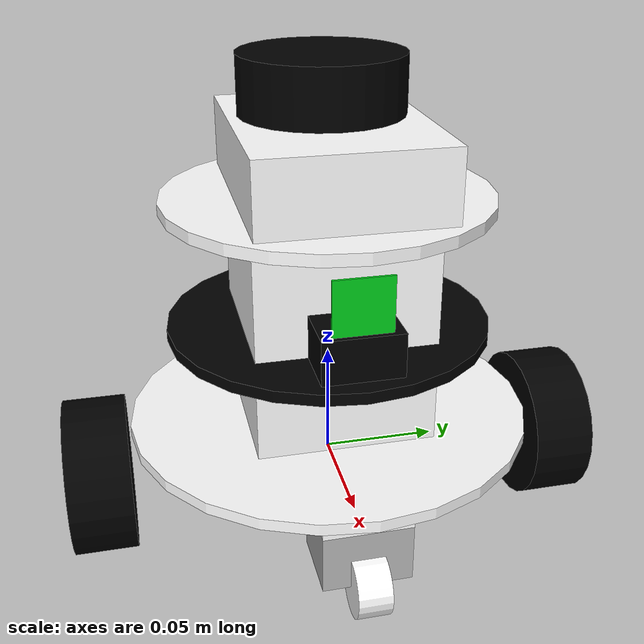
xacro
<?xml version="1.0"?>

<robot xmlns:xacro="http://www.ros.org/wiki/xacro"  name="TTR01">

    <xacro:arg name="use_ros2_control" default="true"/>
    <xacro:arg name="sim_mode" default="false"/>

    <xacro:include filename="robot_parameters.xacro"/>
    <xacro:include filename="robot.xacro"/>
    <xacro:include filename="gazebo_setup.xacro"/>
    <xacro:include filename="lidar.xacro"/>
    <xacro:include filename="camera.xacro" />

    <xacro:if value="$(arg use_ros2_control)">
        <xacro:include filename="ros2_control.xacro" />
    </xacro:if>
    <xacro:unless value="$(arg use_ros2_control)">
        <xacro:include filename="gazebo_control.xacro" />
    </xacro:unless>

    </robot>

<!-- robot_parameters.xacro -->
<robot xmlns:xacro="http://www.ros.org/wiki/xacro" >

    <!-- Colors -->
    <material name="white">
        <color rgba="1 1 1 1"/>
    </material>

    <material name="orange">
        <color rgba="1 0.3 0.1 1"/>
    </material>

    <material name="blue">
        <color rgba="0.2 0.2 1 1"/>
    </material>

    <material name="green">
        <color rgba="0 0.8 0.1 1"/>
    </material>

    <material name="light_gray">
        <color rgba="0.7 0.7 0.7 1"/>
    </material>

    <material name="dark_gray">
        <color rgba="0.3 0.3 0.3 1"/>
    </material>

    <material name="black">
        <color rgba="0 0 0 1"/>
    </material>

    <!--Measures-->
    <xacro:property name="B_base_length" value="0.005"/>
    <xacro:property name="B_base_radius" value="0.089"/>

    <xacro:property name="MT_length" value="0.005"/>
    <xacro:property name="MT_radius" value="0.070"/>

    <xacro:property name="Support_AX" value="0.07571"/>
    <xacro:property name="Support_AY" value="0.07648"/>
    <xacro:property name="Support_AZ" value="0.04"/>

    <xacro:property name="Support_BX" value="0.07571"/>
    <xacro:property name="Support_BY" value="0.07648"/>
    <xacro:property name="Support_BZ" value="0.051"/>

    <xacro:property name="wheel_thickness" value="0.027"/>
    <xacro:property name="wheel_radius" value="0.0341"/>

    <xacro:property name="C_support_box_X" value="0.032"/>
    <xacro:property name="C_support_box_Y" value="0.038"/>
    <xacro:property name="C_support_box_Z" value="0.013"/>

    <xacro:property name="U_base_box_X" value="0.032"/>
    <xacro:property name="U_base_box_Y" value="0.038"/>
    <xacro:property name="U_base_box_Z" value="0.0256"/>

    <xacro:property name="U_wheel_thickness" value="0.0144"/>
    <xacro:property name="U_wheel_radius" value="0.013"/>

    <xacro:property name="Lidar_base_X" value="0.10457"/>
    <xacro:property name="Lidar_base_Y" value="0.0787"/>
    <xacro:property name="Lidar_base_Z" value="0.0305"/>

    <xacro:property name="Lidar_motor_length" value="0.0245"/>
    <xacro:property name="Lidar_motor_radius" value="0.035"/>

    <xacro:property name="Camera_base_X" value="0.0265"/>
    <xacro:property name="Camera_base_Y" value="0.0335"/>
    <xacro:property name="Camera_base_Z" value="0.01878"/>

    <xacro:property name="Camera_X" value="0.00112"/>
    <xacro:property name="Camera_Y" value="0.0246"/>
    <xacro:property name="Camera_Z" value="0.024"/>

    <!--Mass-->
    <xacro:property name="B_base_mass" value="0.08"/>

    <xacro:property name="MT_mass" value="0.04"/>

    <xacro:property name="Support_A_mass" value="0.3"/>

    <xacro:property name="Support_B_mass" value="0.3"/>

    <xacro:property name="wheel_mass" value="0.300"/>

    <xacro:property name="C_support_mass" value="0.01"/>

    <xacro:property name="U_base_mass" value="0.05"/>

    <xacro:property name="U_wheel_mass" value="0.01"/>

    <xacro:property name="Lidar_base_mass" value="0.1"/>

    <xacro:property name="Lidar_motor_mass" value="0.1"/>

    <xacro:property name="Camera_base_mass" value="0.025"/>

    <xacro:property name="Camera_mass" value="0.01"/>

    <!-- Standard inertial calculations -->
    <xacro:macro name="inertial_sphere" params="mass radius *origin">
        <inertial>
            <xacro:insert_block name="origin"/>
            <mass value="${mass}" />
            <inertia ixx="${(2/5) * mass * (radius*radius)}" ixy="0.0" ixz="0.0"
                    iyy="${(2/5) * mass * (radius*radius)}" iyz="0.0"
                    izz="${(2/5) * mass * (radius*radius)}" />
        </inertial>
    </xacro:macro>

    <xacro:macro name="inertial_box" params="mass x y z *origin">
        <inertial>
            <xacro:insert_block name="origin"/>
            <mass value="${mass}" />
            <inertia ixx="${(1/12) * mass * (y*y+z*z)}" ixy="0.0" ixz="0.0"
                    iyy="${(1/12) * mass * (z*z+x*x)}" iyz="0.0"
                    izz="${(1/12) * mass * (x*x+y*y)}" />
        </inertial>
    </xacro:macro>

    <xacro:macro name="inertial_cylinder" params="mass length radius *origin">
        <inertial>
            <xacro:insert_block name="origin"/>
            <mass value="${mass}" />
            <inertia ixx="${(1/12) * mass * (3*radius*radius + length*length)}" ixy="0.0" ixz="0.0"
                    izz="${(1/2) * mass * (radius*radius)}"
                    iyy="${(1/12) * mass * (3*radius*radius + length*length)}" iyz="0.0" />
        </inertial>
    </xacro:macro>

</robot>

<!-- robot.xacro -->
<robot xmlns:xacro="http://www.ros.org/wiki/xacro" >

    <!--base link-->
    <link name="base_link"> </link>

    <!--Base footprint-->
    <joint name="base_footprint_joint" type="fixed">
        <origin xyz="0 0 -0.0341" rpy="0 0 0"/>
        <parent link="base_link"/>
        <child link="base_footprint"/>
    </joint>

    <link name="base_footprint">
    </link>

    <!--Bottom base-->
    <joint name="B_base_joint" type="fixed">
        <origin xyz="0 0 0.0225" rpy="0 0 0"/>
        <parent link="base_link"/>
        <child link="B_base_link"/>
    </joint>

    <link name="B_base_link">
        <visual>
            <origin xyz="0 0 -${B_base_length/2}" rpy="0 0 0"/>
            <geometry>
                <cylinder length="${B_base_length}" radius="${B_base_radius}"/>
            </geometry>
            <material name="white"/>
        </visual>

        <collision>
            <origin xyz="0 0 -${B_base_length/2}" rpy="0 0 0"/>
            <geometry>
                <cylinder length="${B_base_length}" radius="${B_base_radius}"/>
            </geometry>
        </collision>

        <xacro:inertial_cylinder mass="${B_base_mass}" length="${B_base_length}" radius="${B_base_radius}">
            <origin xyz="0 0 -${B_base_length/2}" rpy="0 0 0"/>
        </xacro:inertial_cylinder>
    </link>

    <!--Left wheel-->
    <joint name="L_wheel_joint" type="continuous">
        <origin xyz="0 0.104 0" rpy="-${pi/2} ${pi/2} 0"/>
        <parent link="base_link"/>
        <child link="L_wheel_link"/>
        <axis xyz="0 0 1"/>
        <limit effort="0.323" velocity="10.47" />
    </joint>

    <link name="L_wheel_link">
        <visual>
            <origin xyz="0 0 0" rpy="0 0 0"/>
            <geometry>
                <cylinder length="${wheel_thickness}" radius="${wheel_radius}"/>
            </geometry>
            <material name="black"/>
        </visual>

        <collision>
            <origin xyz="0 0 0" rpy="0 0 0"/>
            <geometry>
                <sphere radius="${wheel_radius}"/>
            </geometry>
        </collision>

        <xacro:inertial_cylinder mass="${wheel_mass}" length="${wheel_thickness}" radius="${wheel_radius}">
            <origin xyz="0 0 0" rpy="0 0 0"/>
        </xacro:inertial_cylinder>
    </link>

    <!--Right wheel-->
    <joint name="R_wheel_joint" type="continuous">
        <origin xyz="0 -0.104 0" rpy="${pi/2} ${pi/2} 0"/>
        <parent link="base_link"/>
        <child link="R_wheel_link"/>
        <axis xyz="0 0 -1"/>
        <limit effort="0.323" velocity="10.47" />
    </joint>

    <link name="R_wheel_link">
        <visual>
            <origin xyz="0 0 0" rpy="0 0 0"/>
            <geometry>
                <cylinder length="${wheel_thickness}" radius="${wheel_radius}"/>
            </geometry>
            <material name="black"/>
        </visual>

        <collision>
            <origin xyz="0 0 0" rpy="0 0 0"/>
            <geometry>
                <sphere radius="${wheel_radius}"/>
            </geometry>
        </collision>

        <xacro:inertial_cylinder mass="${wheel_mass}" length="${wheel_thickness}" radius="${wheel_radius}">
            <origin xyz="0 0 0" rpy="0 0 0"/>
        </xacro:inertial_cylinder>
    </link>

    <!-- Caster support 1 -->
    <joint name="C_support_1_joint" type="fixed">
        <origin xyz="0.05751 0 -0.005" rpy="0 0 0"/>
        <parent link="B_base_link"/>
        <child link="C_support_1_link"/>
    </joint>

    <link name="C_support_1_link">
        <visual>
            <origin xyz="0 0 -${C_support_box_Z/2}" rpy="0 0 0"/>
            <geometry>
                <box size="${C_support_box_X} ${C_support_box_Y} ${C_support_box_Z}"/>
            </geometry>
            <material name="white"/>
        </visual>

        <collision>
            <origin xyz="0 0 -${C_support_box_Z/2}" rpy="0 0 0"/>
            <geometry>
                <box size="${C_support_box_X} ${C_support_box_Y} ${C_support_box_Z}"/>
            </geometry>
        </collision>

        <xacro:inertial_box mass="${C_support_mass}" x="${C_support_box_X}" y="${C_support_box_Y}" z="${C_support_box_Z}">
            <origin xyz="0 0 -${C_support_box_Z/2}" rpy="0 0 0"/>
        </xacro:inertial_box>
    </link>

    <!--Caster wheel base 1-->
    <joint name="U_base_wheel_1_joint" type="continuous">
        <origin xyz="0 0 -0.013" rpy="${pi} 0 0"/>
        <parent link="C_support_1_link"/>
        <child link="U_base_wheel_1_link"/>
        <axis xyz="0 0 -1"/>
    </joint>

    <link name="U_base_wheel_1_link">
        <visual>
            <origin xyz="0 0 ${U_base_box_Z/2}" rpy="0 0 0"/>
            <geometry>
                <box size="${U_base_box_X} ${U_base_box_Y} ${U_base_box_Z}"/>
            </geometry>
            <material name="light_gray"/>
        </visual>

        <collision>
            <origin xyz="0 0 ${U_base_box_Z/2}" rpy="0 0 0"/>
            <geometry>
                <box size="${U_base_box_X} ${U_base_box_Y} ${U_base_box_Z}"/>
            </geometry>
        </collision>

        <xacro:inertial_box mass="${U_base_mass}" x="${U_base_box_X}" y="${U_base_box_Y}" z="${U_base_box_Z}">
            <origin xyz="0 0 ${U_base_box_Z/2}" rpy="0 0 0"/>
        </xacro:inertial_box>
    </link>

    <!--Caster wheel 1-->
    <joint name="U_wheel_1_joint" type="continuous">
        <origin xyz="0.016 0 0.0256" rpy="${pi/2} 0 0"/>

        <parent link="U_base_wheel_1_link"/>
        <child link="U_wheel_1_link"/>
        <axis xyz="0 0 -1"/>
    </joint>

    <link name="U_wheel_1_link">
        <visual>
            <origin xyz="0 0 0" rpy="0 0 0"/>

            <geometry>
                <cylinder radius="${U_wheel_radius}" length="${U_wheel_thickness}"/>
            </geometry>

            <material name="white"/>
        </visual>

        <collision>
            <origin xyz="0 0 0" rpy="0 0 0"/>

            <geometry>
                <cylinder radius="${U_wheel_radius}" length="${U_wheel_thickness}"/>
            </geometry>
        </collision>

        <xacro:inertial_cylinder mass="${U_wheel_mass}" length="${U_wheel_thickness}" radius="${U_wheel_radius}">
            <origin xyz="0 0 0" rpy="0 0 0"/>

        </xacro:inertial_cylinder>
    </link>

    <!-- Caster support 2 -->
    <joint name="C_support_2_joint" type="fixed">
        <origin xyz="-0.05751 0 -0.005" rpy="0 0 0"/>
        <parent link="B_base_link"/>
        <child link="C_support_2_link"/>
    </joint>

    <link name="C_support_2_link">
        <visual>
            <origin xyz="0 0 -${C_support_box_Z/2}" rpy="0 0 0"/>
            <geometry>
                <box size="${C_support_box_X} ${C_support_box_Y} ${C_support_box_Z}"/>
            </geometry>
            <material name="white"/>
        </visual>

        <collision>
            <origin xyz="0 0 -${C_support_box_Z/2}" rpy="0 0 0"/>
            <geometry>
                <box size="${C_support_box_X} ${C_support_box_Y} ${C_support_box_Z}"/>
            </geometry>
        </collision>

        <xacro:inertial_box mass="${C_support_mass}" x="${C_support_box_X}" y="${C_support_box_Y}" z="${C_support_box_Z}">
            <origin xyz="0 0 -${C_support_box_Z/2}" rpy="0 0 0"/>
        </xacro:inertial_box>
    </link>

    <!--Caster wheel base 2-->
    <joint name="U_base_wheel_2_joint" type="continuous">
        <origin xyz="0 0 -0.013" rpy="${pi} 0 0"/>
        <parent link="C_support_2_link"/>
        <child link="U_base_wheel_2_link"/>
        <axis xyz="0 0 -1"/>
    </joint>

    <link name="U_base_wheel_2_link">
        <visual>
            <origin xyz="0 0 ${U_base_box_Z/2}" rpy="0 0 0"/>
            <geometry>
                <box size="${U_base_box_X} ${U_base_box_Y} ${U_base_box_Z}"/>
            </geometry>
            <material name="light_gray"/>
        </visual>

        <collision>
            <origin xyz="0 0 ${U_base_box_Z/2}" rpy="0 0 0"/>
            <geometry>
                <box size="${U_base_box_X} ${U_base_box_Y} ${U_base_box_Z}"/>
            </geometry>
        </collision>

        <xacro:inertial_box mass="${U_base_mass}" x="${U_base_box_X}" y="${U_base_box_Y}" z="${U_base_box_Z}">
            <origin xyz="0 0 ${U_base_box_Z/2}" rpy="0 0 0"/>
        </xacro:inertial_box>
    </link>

    <!--Caster wheel 2-->
    <joint name="U_wheel_2_joint" type="continuous">
        <origin xyz="0.016 0 0.0256" rpy="${pi/2} 0 0"/>

        <parent link="U_base_wheel_2_link"/>
        <child link="U_wheel_2_link"/>
        <axis xyz="0 0 -1"/>
    </joint>

    <link name="U_wheel_2_link">
        <visual>
            <origin xyz="0 0 0" rpy="0 0 0"/>

            <geometry>
                <cylinder radius="${U_wheel_radius}" length="${U_wheel_thickness}"/>
            </geometry>

            <material name="white"/>
        </visual>

        <collision>
            <origin xyz="0 0 0" rpy="0 0 0"/>

            <geometry>
                <cylinder radius="${U_wheel_radius}" length="${U_wheel_thickness}"/>
            </geometry>
        </collision>

        <xacro:inertial_cylinder mass="${U_wheel_mass}" length="${U_wheel_thickness}" radius="${U_wheel_radius}">
            <origin xyz="0 0 0" rpy="0 0 0"/>

        </xacro:inertial_cylinder>
    </link>

    <!--Support A-->
    <joint name="Support_A_joint" type="fixed">
        <origin xyz="0 0 0.02" rpy="0 0 0"/>
        <parent link="B_base_link"/>
        <child link="Support_A_link"/>
    </joint>

    <link name="Support_A_link">
        <visual>
            <origin xyz="0 0 0" rpy="0 0 0"/>
            <geometry>
                <box size="${Support_AX} ${Support_AY} ${Support_AZ}"/>
            </geometry>
            <material name="white"/>
        </visual>

        <collision>
            <origin xyz="0 0 0" rpy="0 0 0"/>
            <geometry>
                <box size="${Support_AX} ${Support_AY} ${Support_AZ}"/>
            </geometry>
        </collision>

        <xacro:inertial_box mass="${Support_A_mass}" x="${Support_AX}" y="${Support_AY}" z="${Support_AZ}">
            <origin xyz="0 0 0" rpy="0 0 0"/>
        </xacro:inertial_box>
    </link>

    <!--Middle base-->
    <joint name="M_base_joint" type="fixed">
        <origin xyz="0 0 0.025" rpy="0 0 0"/>
        <parent link="Support_A_link"/>
        <child link="M_base_link"/>
    </joint>

    <link name="M_base_link">
        <visual>
            <origin xyz="0 0 -${MT_length/2}" rpy="0 0 0"/>
            <geometry>
                <cylinder length="${MT_length}" radius="${MT_radius}"/>
            </geometry>
            <material name="black"/>
        </visual>

        <collision>
            <origin xyz="0 0 -${MT_length/2}" rpy="0 0 0"/>
            <geometry>
                <cylinder length="${MT_length}" radius="${MT_radius}"/>
            </geometry>
        </collision>

        <xacro:inertial_cylinder mass="${MT_mass}" length="${MT_length}" radius="${MT_radius}">
            <origin xyz="0 0 -${MT_length/2}" rpy="0 0 0"/>
        </xacro:inertial_cylinder>
    </link>

    <!--Support B-->
    <joint name="Support_B_joint" type="fixed">
        <origin xyz="0 0 0.0255" rpy="0 0 0"/>
        <parent link="M_base_link"/>
        <child link="Support_B_link"/>
    </joint>

    <link name="Support_B_link">
        <visual>
            <origin xyz="0 0 0" rpy="0 0 0"/>
            <geometry>
                <box size="${Support_BX} ${Support_BY} ${Support_BZ}"/>
            </geometry>
            <material name="white"/>
        </visual>

        <collision>
            <origin xyz="0 0 0" rpy="0 0 0"/>
            <geometry>
                <box size="${Support_BX} ${Support_BY} ${Support_BZ}"/>
            </geometry>
        </collision>

        <xacro:inertial_box mass="${Support_B_mass}" x="${Support_BX}" y="${Support_BY}" z="${Support_BZ}">
            <origin xyz="0 0 0" rpy="0 0 0"/>
        </xacro:inertial_box>
    </link>

    <!--Top base-->
    <joint name="T_base_joint" type="fixed">
        <origin xyz="0 0 0.0305" rpy="0 0 0"/>
        <parent link="Support_B_link"/>
        <child link="T_base_link"/>
    </joint>

    <link name="T_base_link">
        <visual>
            <origin xyz="0 0 -${MT_length/2}" rpy="0 0 0"/>
            <geometry>
                <cylinder length="${MT_length}" radius="${MT_radius}"/>
            </geometry>
            <material name="white"/>
        </visual>

        <collision>
            <origin xyz="0 0 -${MT_length/2}" rpy="0 0 0"/>
            <geometry>
                <cylinder length="${MT_length}" radius="${MT_radius}"/>
            </geometry>
        </collision>

        <xacro:inertial_cylinder mass="${MT_mass}" length="${MT_length}" radius="${MT_radius}">
            <origin xyz="0 0 -${MT_length/2}" rpy="0 0 0"/>
        </xacro:inertial_cylinder>
    </link>

</robot>

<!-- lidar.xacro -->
<robot xmlns:xacro="http://www.ros.org/wiki/xacro" >

    <!--lidar base frame-->
    <joint name="Lidar_base_joint" type="fixed">
        <origin xyz="0 0 0.0305" rpy="0 0 0"/>

        <parent link="T_base_link"/>
        <child link="Lidar_base_link"/>
    </joint>

    <link name="Lidar_base_link">
        <visual>
            <origin xyz="0 0 -${Lidar_base_Z/2}" rpy="0 0 0"/>

            <geometry>
                <box size="${Lidar_base_X} ${Lidar_base_Y} ${Lidar_base_Z}"/>
            </geometry>

            <material name="white"/>
        </visual>

        <collision>
            <origin xyz="0 0 -${Lidar_base_Z/2}" rpy="0 0 0"/>

            <geometry>
                <box size="${Lidar_base_X} ${Lidar_base_Y} ${Lidar_base_Z}"/>
            </geometry>
        </collision>

        <xacro:inertial_box mass="${Lidar_base_mass}" x="${Lidar_base_X}" y="${Lidar_base_Y}" z="${Lidar_base_Z}">
            <origin xyz="0 0 -${Lidar_base_Z/2}" rpy="0 0 0"/>

        </xacro:inertial_box>
    </link>

    <!--Lidar motor frame-->
    <joint name="Lidar_motor_joint" type="fixed">
        <origin xyz="-0.011 0 0.01225" rpy="0 0 0"/>

        <parent link="Lidar_base_link"/>
        <child link="Lidar_motor_link"/>
    </joint>

    <link name="Lidar_motor_link">
        <visual>
            <origin xyz="0 0 0" rpy="0 0 0"/>

            <geometry>
                <cylinder length="${Lidar_motor_length}" radius="${Lidar_motor_radius}"/>
            </geometry>

            <material name="black"/>
        </visual>

        <collision>
            <origin xyz="0 0 0" rpy="0 0 0"/>

            <geometry>
                <cylinder length="${Lidar_motor_length}" radius="${Lidar_motor_radius}"/>
            </geometry>
        </collision>

        <xacro:inertial_cylinder mass="${Lidar_motor_mass}" length="${Lidar_motor_length}" radius="${Lidar_motor_radius}">
            <origin xyz="0 0 0" rpy="0 0 0"/>

        </xacro:inertial_cylinder>
    </link>

    <!-- Gazebo lidar setup -->
    <gazebo reference="Lidar_motor_link">
        <sensor name="laser" type="ray">
            <pose> 0 0 0 0 0 0 </pose>
            <always_on>true</always_on>
            <visualize> false </visualize>
            <update_rate> 10 </update_rate>
            <ray>
                <scan>
                    <horizontal>
                        <samples> 360 </samples>
                        <resolution> 1 </resolution>
                        <min_angle> -3.14 </min_angle>
                        <max_angle> 3.14 </max_angle>
                    </horizontal>
                </scan>
                <noise>
                    <type>gaussian</type>
                    <mean>0.0</mean>
                    <stddev>0.005</stddev>
                </noise>
                <range>
                    <min> 0.15 </min>
                    <max> 12 </max>
                    <resolution> 0.01 </resolution>
                </range>
            </ray>
            <plugin name="laser_controller" filename="libgazebo_ros_ray_sensor.so">
                <ros>
                    <argument> ~/out:=scan </argument>
                </ros>
                <output_type> sensor_msgs/LaserScan </output_type>
                <frame_name> Lidar_motor_link </frame_name>
            </plugin>
        </sensor>
    </gazebo>

</robot>

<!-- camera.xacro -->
<robot xmlns:xacro="http://www.ros.org/wiki/xacro" >

    <!--Camera base frame-->
    <joint name="Camera_base_joint" type="fixed">
        <origin xyz="0.06183 0 0.01878" rpy="0 0 0"/>

        <parent link="M_base_link"/>
        <child link="Camera_base_link"/>
    </joint>

    <link name="Camera_base_link">
        <visual>
            <origin xyz="-${Camera_base_X/2} 0 -${Camera_base_Z/2}" rpy="0 0 0"/>

            <geometry>
                <box size="${Camera_base_X} ${Camera_base_Y} ${Camera_base_Z}"/>
            </geometry>

            <material name="black"/>
        </visual>

        <collision>
            <origin xyz="-${Camera_base_X/2} 0 -${Camera_base_Z/2}" rpy="0 0 0"/>

            <geometry>
                <box size="${Camera_base_X} ${Camera_base_Y} ${Camera_base_Z}"/>
            </geometry>
        </collision>

        <xacro:inertial_box mass="${Camera_base_mass}" x="${Camera_base_X}" y="${Camera_base_Y}" z="${Camera_base_Z}">
            <origin xyz="-${Camera_base_X/2} 0 -${Camera_base_Z/2}" rpy="0 0 0"/>

        </xacro:inertial_box>
    </link>

    <!--Camera frame-->
    <joint name="Camera_joint" type="fixed">
        <origin xyz="-0.0027 0 0.01134" rpy="0 0 0"/>

        <parent link="Camera_base_link"/>
        <child link="Camera_link"/>
    </joint>

    <link name="Camera_link">
        <visual>
            <origin xyz="0 0 0" rpy="0 0 0"/>

            <geometry>
                <box size="${Camera_X} ${Camera_Y} ${Camera_Z}"/>
            </geometry>

            <material name="green"/>
        </visual>

        <collision>
            <origin xyz="0 0 0" rpy="0 0 0"/>

            <geometry>
                <box size="${Camera_X} ${Camera_Y} ${Camera_Z}"/>
            </geometry>
        </collision>

        <xacro:inertial_box mass="${Camera_mass}" x="${Camera_X}" y="${Camera_Y}" z="${Camera_Z}">
            <origin xyz="0 0 0" rpy="0 0 0"/>

        </xacro:inertial_box>
    </link>

    <!--Camera optical frame-->
    <joint name="Camera_optical_joint" type="fixed">
        <origin xyz="0 0 0" rpy="-${pi/2} 0 -${pi/2}"/>

        <parent link="Camera_link"/>
        <child link="Camera_optical_link"/>
    </joint>

    <link name="Camera_optical_link"> </link>

    <!-- Gazebo camera setup -->
    <gazebo reference="Camera_link">
        <sensor name="camera" type="camera">
            <pose>0 0 0 0 0 0</pose>
            <visualize>true</visualize>
            <update_rate>10</update_rate>
            <camera>
                <horizontal_fov>1.264</horizontal_fov>
                <image>
                    <format>R8G8B8</format>
                    <width>1080</width>
                    <height>720</height>
                </image>
                <clip>
                    <near>0.05</near>
                    <far>8.0</far>
                </clip>
            </camera>
            <plugin name="camera_controller" filename="libgazebo_ros_camera.so">
                <frame_name>Camera_optical_link</frame_name>
            </plugin>
        </sensor>
    </gazebo>

</robot>
